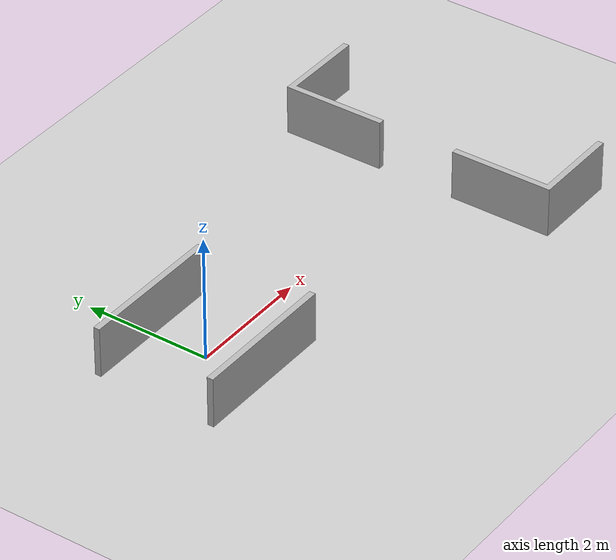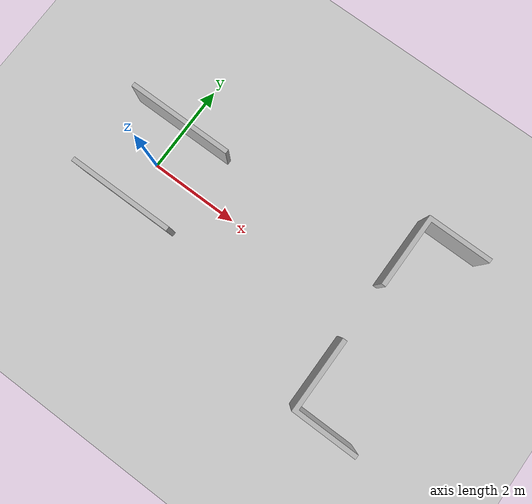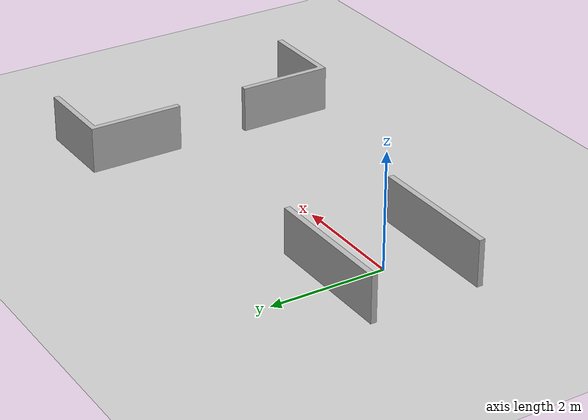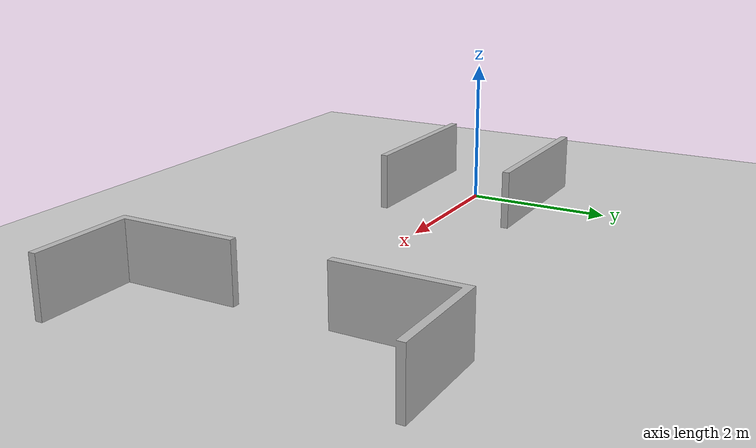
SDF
<?xml version="1.0" ?>
<sdf version="1.8">
  <world name="amr_world">

    <!-- MANDATORY SIMULATION SYSTEM PLUGINS -->
    <plugin
      filename="gz-sim-physics-system"
      name="gz::sim::systems::Physics">
    </plugin>
    <plugin
      filename="gz-sim-user-commands-system"
      name="gz::sim::systems::UserCommands">
    </plugin>
    <plugin
      filename="gz-sim-scene-broadcaster-system"
      name="gz::sim::systems::SceneBroadcaster">
    </plugin>
    <plugin
      filename="gz-sim-sensors-system"
      name="gz::sim::systems::Sensors">
      <render_engine>ogre2</render_engine>
    </plugin>

    <!-- Physics settings -->
    <physics name="1ms" type="ignored">
      <max_step_size>0.001</max_step_size>
      <real_time_factor>1.0</real_time_factor>
    </physics>

    <!-- Create an offline Sun / Light source -->
    <light type="directional" name="sun">
      <cast_shadows>true</cast_shadows>
      <pose>0 0 10 0 0 0</pose>
      <diffuse>0.8 0.8 0.8 1</diffuse>
      <specular>0.2 0.2 0.2 1</specular>
      <direction>-0.5 0.1 -0.9</direction>
    </light>

    <!-- Create an offline Ground Plane -->
    <model name="ground_plane">
      <static>true</static>
      <link name="link">
        <collision name="collision">
          <geometry>
            <plane>
              <normal>0 0 1</normal>
              <size>100 100</size>
            </plane>
          </geometry>
        </collision>
        <visual name="visual">
          <geometry>
            <plane>
              <normal>0 0 1</normal>
              <size>100 100</size>
            </plane>
          </geometry>
          <material>
            <ambient>0.8 0.8 0.8 1</ambient>
            <diffuse>0.8 0.8 0.8 1</diffuse>
            <specular>0.8 0.8 0.8 1</specular>
          </material>
        </visual>
      </link>
    </model>

    <!-- Include your custom Fusion 360 environment model -->
    <include>
      <uri>model://amr_environment</uri>
      <pose>0 0 0 0 0 0</pose>
    </include>

  </world>
</sdf>

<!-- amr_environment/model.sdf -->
<sdf version="1.8">
  <model name="amr_environment">
    <static>true</static>
    <link name="link">
      <collision name="collision">
        <geometry>
          <mesh>
            <uri>model://amr_environment/meshes/environment.obj</uri>
          </mesh>
        </geometry>
      </collision>
      <visual name="visual">
        <geometry>
          <mesh>
            <uri>model://amr_environment/meshes/environment.obj</uri>
          </mesh>
        </geometry>
      </visual>
    </link>
  </model>
</sdf>
